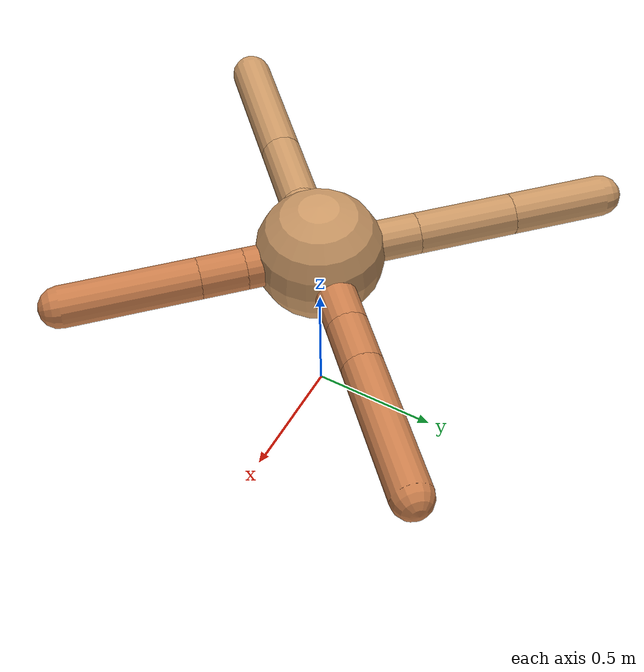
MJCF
<mujoco model="ant">
  <compiler angle="degree" coordinate="local" inertiafromgeom="true" />
  <option integrator="RK4" timestep="0.01" />
  <custom>
    <numeric data="0.0 0.0 0.55 1.0 0.0 0.0 0.0 0.0 1.0 0.0 -1.0 0.0 -1.0 0.0 1.0" name="init_qpos" />
  </custom>
  <default>
    <joint armature="1" damping="1" limited="true" />
    <geom conaffinity="0" condim="3" density="5.0" friction="1.5 0.1 0.1" margin="0.01" rgba="0.8 0.6 0.4 1" />
  </default>
  <worldbody>
    <body name="torso" pos="0 0 0.75">
      <geom name="torso_geom" pos="0 0 0" size="0.25" type="sphere" />

      <body name="front_left_leg" pos="0 0 0">
        <geom fromto="0.0 0.0 0.0 0.2698710302483379 0.2698710302483379 0.0" name="aux_1_geom" size="0.08" type="capsule" rgba=".8 .5 .3 1" />
        <body name="aux_1" pos="0.2698710302483379 0.2698710302483379 0.0">
          <joint axis="0 0 1" name="hip_1" pos="0.0 0.0 0.0" range="-40 40" type="hinge" />
          <geom fromto="0.0 0.0 0.0 0.13710337714669185 0.13710337714669185 0.0" name="left_leg_geom" size="0.08" type="capsule" rgba=".8 .5 .3 1" />
          <body pos="0.13710337714669185 0.13710337714669185 0.0" name="front_left_foot">
            <joint axis="-1 1 0" name="ankle_1" pos="0.0 0.0 0.0" range="30 100" type="hinge" />
            <geom fromto="0.0 0.0 0.0 0.4004372789322848 0.4004372789322848 0.0" name="left_ankle_geom" size="0.08" type="capsule" rgba=".8 .5 .3 1" />
          </body>
        </body>
      </body>
      <body name="front_right_leg" pos="0 0 0">
        <geom fromto="0.0 0.0 0.0 -0.2731776171681571 0.2731776171681571 0.0" name="aux_2_geom" size="0.08" type="capsule" />
        <body name="aux_2" pos="-0.2731776171681571 0.2731776171681571 0.0">
          <joint axis="0 0 1" name="hip_2" pos="0.0 0.0 0.0" range="-40 40" type="hinge" />
          <geom fromto="0.0 0.0 0.0 -0.2729428081310001 0.2729428081310001 0.0" name="right_leg_geom" size="0.08" type="capsule" />
          <body pos="-0.2729428081310001 0.2729428081310001 0.0" name="front_right_foot">
            <joint axis="1 1 0" name="ankle_2" pos="0.0 0.0 0.0" range="-100 -30" type="hinge" />
            <geom fromto="0.0 0.0 0.0 -0.26570703690591674 0.26570703690591674 0.0" name="right_ankle_geom" size="0.08" type="capsule" />
          </body>
        </body>
      </body>
      <body name="left_back_leg" pos="0 0 0">
        <geom fromto="0.0 0.0 0.0 -0.2003562370452059 -0.2003562370452059 0.0" name="aux_3_geom" size="0.08" type="capsule" />
        <body name="aux_3" pos="-0.2003562370452059 -0.2003562370452059 0.0">
          <joint axis="0 0 1" name="hip_3" pos="0.0 0.0 0.0" range="-40 40" type="hinge" />
          <geom fromto="0.0 0.0 0.0 -0.21701871701593972 -0.21701871701593972 0.0" name="back_leg_geom" size="0.08" type="capsule" />
          <body pos="-0.21701871701593972 -0.21701871701593972 0.0" name="left_back_foot">
            <joint axis="-1 1 0" name="ankle_3" pos="0.0 0.0 0.0" range="-100 -30" type="hinge" />
            <geom fromto="0.0 0.0 0.0 -0.3640515002838839 -0.3640515002838839 0.0" name="third_ankle_geom" size="0.08" type="capsule" />
          </body>
        </body>
      </body>
      <body name="right_back_leg" pos="0 0 0">
        <geom fromto="0.0 0.0 0.0 0.20616048312594037 -0.20616048312594037 0.0" name="aux_4_geom" size="0.08" type="capsule" rgba=".8 .5 .3 1" />
        <body name="aux_4" pos="0.20616048312594037 -0.20616048312594037 0.0">
          <joint axis="0 0 1" name="hip_4" pos="0.0 0.0 0.0" range="-40 40" type="hinge" />
          <geom fromto="0.0 0.0 0.0 0.125034601518105 -0.125034601518105 0.0" name="rightback_leg_geom" size="0.08" type="capsule" rgba=".8 .5 .3 1" />
          <body pos="0.125034601518105 -0.125034601518105 0.0" name="right_back_foot">
            <joint axis="1 1 0" name="ankle_4" pos="0.0 0.0 0.0" range="30 100" type="hinge" />
            <geom fromto="0.0 0.0 0.0 0.36949413949875576 -0.36949413949875576 0.0" name="fourth_ankle_geom" size="0.08" type="capsule" rgba=".8 .5 .3 1" />
          </body>
        </body>
      </body>
    </body>
  </worldbody>
  <actuator>
    <motor ctrllimited="true" ctrlrange="-1.0 1.0" joint="hip_4" gear="150" />
    <motor ctrllimited="true" ctrlrange="-1.0 1.0" joint="ankle_4" gear="150" />
    <motor ctrllimited="true" ctrlrange="-1.0 1.0" joint="hip_1" gear="150" />
    <motor ctrllimited="true" ctrlrange="-1.0 1.0" joint="ankle_1" gear="150" />
    <motor ctrllimited="true" ctrlrange="-1.0 1.0" joint="hip_2" gear="150" />
    <motor ctrllimited="true" ctrlrange="-1.0 1.0" joint="ankle_2" gear="150" />
    <motor ctrllimited="true" ctrlrange="-1.0 1.0" joint="hip_3" gear="150" />
    <motor ctrllimited="true" ctrlrange="-1.0 1.0" joint="ankle_3" gear="150" />
  </actuator>
</mujoco>
